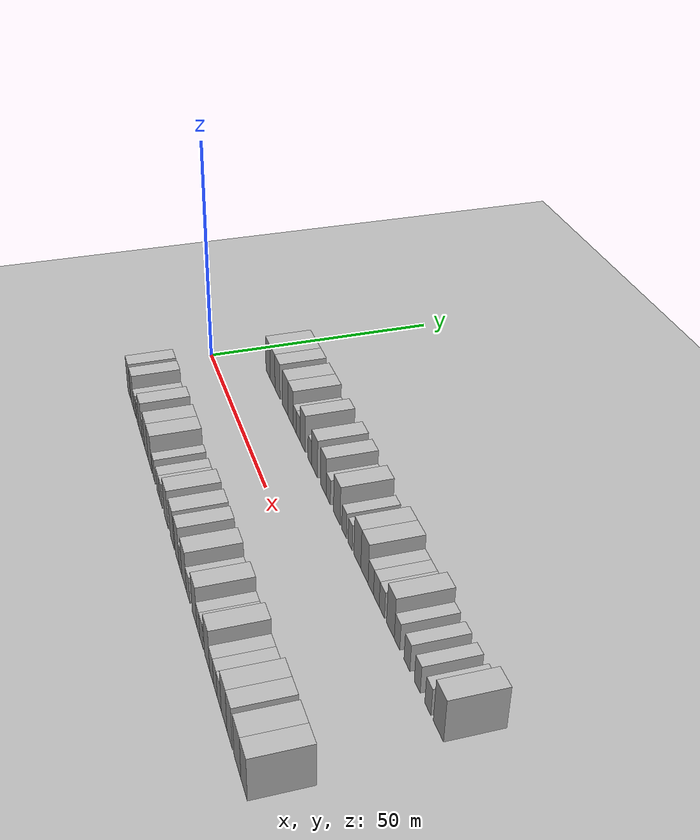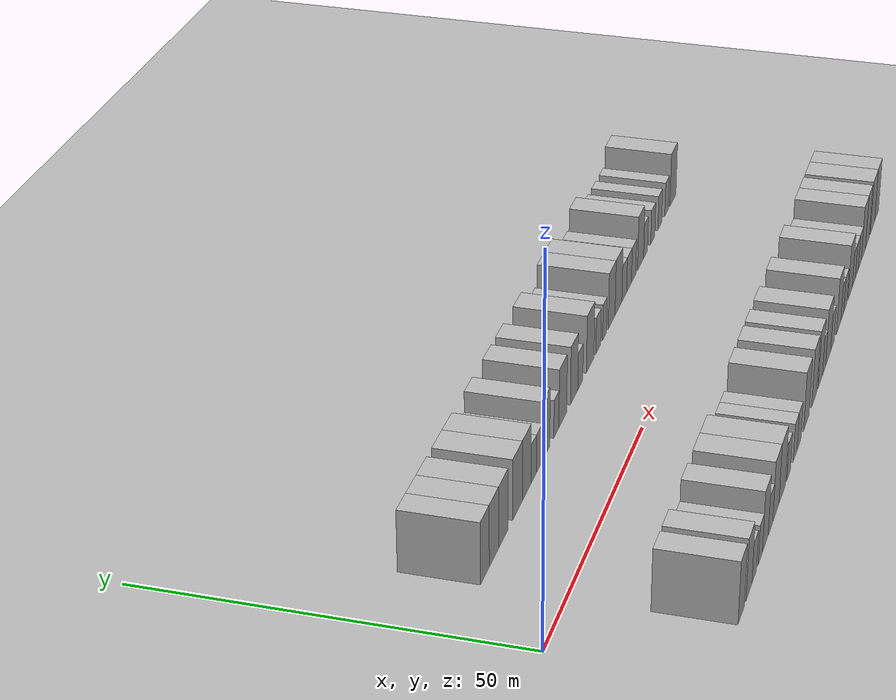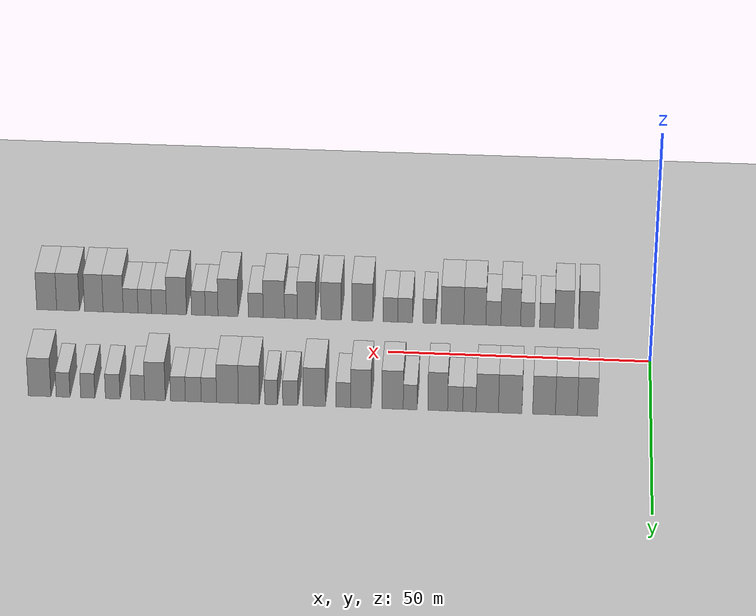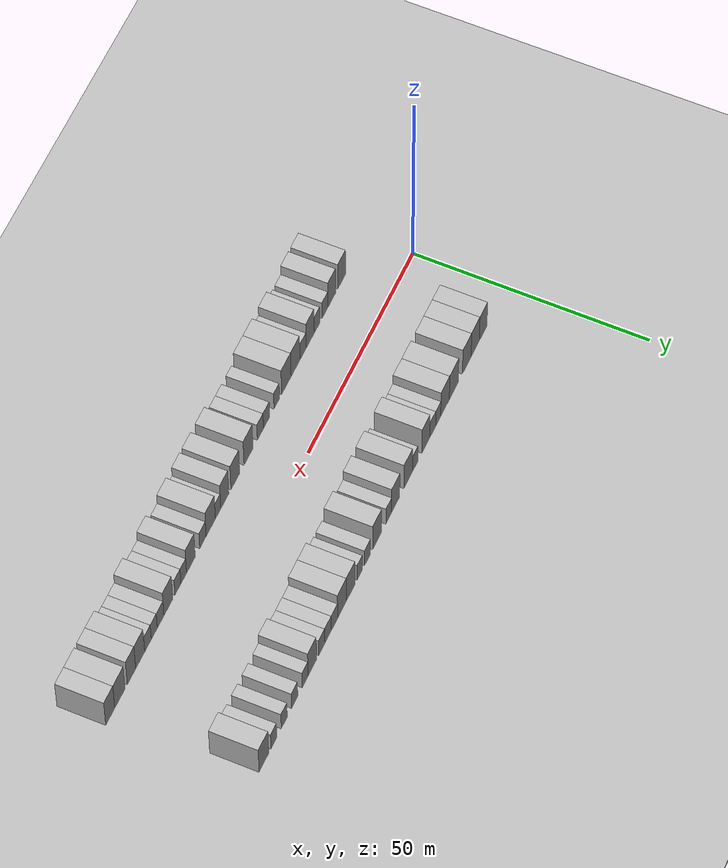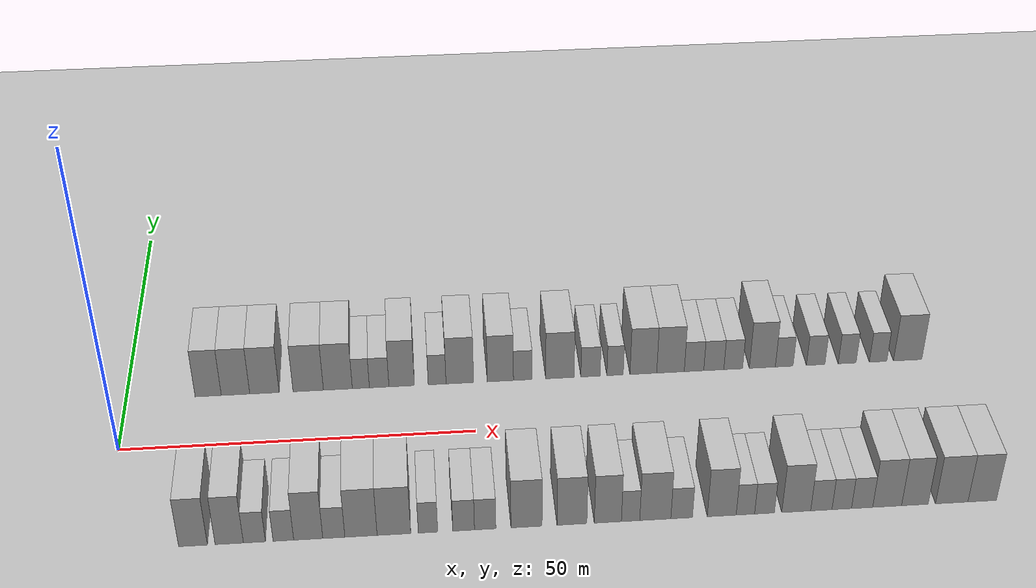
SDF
<sdf version="1.6">
 <world name="default">
  <include><name>ground_plane_1</name><uri>model://HANNAS_ground_plane</uri></include>
  <include>
   <name>ground_plane_2</name>
   <uri>model://HANNAS_ground_plane</uri>
   <pose>100 0 0  0 0 0</pose>
  </include>
  <model name="building_1">
   <static>1</static>
   <pose>11.8743 15.0000 0 0.000000 0.000000 1.570796</pose>
   <link name="link">
    <pose>0 0 4.50 0 0 0</pose>
    <collision name="collision"><geometry><box><size>10.0000 3.7485 9.0000</size></box></geometry></collision>
    <visual name="visual">
     <cast_shadows>0</cast_shadows>
     <geometry><box><size>10.0000 3.7485 9.0000</size></box></geometry>
     <material>
      <script>
       <uri>model://HANNAS_wall/materials/scripts</uri>
       <uri>model://HANNAS_wall/materials/textures</uri>
       <name>vrc/HANNAS_wall</name>
      </script>
     </material>
    </visual>
   </link>
  </model>
  <model name="building_2">
   <static>1</static>
   <pose>15.7916 15.0000 0 0.000000 0.000000 1.570796</pose>
   <link name="link">
    <pose>0 0 4.50 0 0 0</pose>
    <collision name="collision"><geometry><box><size>10.0000 4.0861 9.0000</size></box></geometry></collision>
    <visual name="visual">
     <cast_shadows>0</cast_shadows>
     <geometry><box><size>10.0000 4.0861 9.0000</size></box></geometry>
     <material>
      <script>
       <uri>model://HANNAS_wall/materials/scripts</uri>
       <uri>model://HANNAS_wall/materials/textures</uri>
       <name>vrc/HANNAS_wall</name>
      </script>
     </material>
    </visual>
   </link>
  </model>
  <model name="building_3">
   <static>1</static>
   <pose>19.9500 15.0000 0 0.000000 0.000000 1.570796</pose>
   <link name="link">
    <pose>0 0 4.50 0 0 0</pose>
    <collision name="collision"><geometry><box><size>10.0000 4.2307 9.0000</size></box></geometry></collision>
    <visual name="visual">
     <cast_shadows>0</cast_shadows>
     <geometry><box><size>10.0000 4.2307 9.0000</size></box></geometry>
     <material>
      <script>
       <uri>model://HANNAS_wall/materials/scripts</uri>
       <uri>model://HANNAS_wall/materials/textures</uri>
       <name>vrc/HANNAS_wall</name>
      </script>
     </material>
    </visual>
   </link>
  </model>
  <model name="building_4">
   <static>1</static>
   <pose>26.2549 15.0000 0 0.000000 0.000000 1.570796</pose>
   <link name="link">
    <pose>0 0 4.50 0 0 0</pose>
    <collision name="collision"><geometry><box><size>10.0000 4.3791 9.0000</size></box></geometry></collision>
    <visual name="visual">
     <cast_shadows>0</cast_shadows>
     <geometry><box><size>10.0000 4.3791 9.0000</size></box></geometry>
     <material>
      <script>
       <uri>model://HANNAS_wall/materials/scripts</uri>
       <uri>model://HANNAS_wall/materials/textures</uri>
       <name>vrc/HANNAS_wall</name>
      </script>
     </material>
    </visual>
   </link>
  </model>
  <model name="building_5">
   <static>1</static>
   <pose>30.5329 15.0000 0 0.000000 0.000000 1.570796</pose>
   <link name="link">
    <pose>0 0 4.50 0 0 0</pose>
    <collision name="collision"><geometry><box><size>10.0000 4.1769 9.0000</size></box></geometry></collision>
    <visual name="visual">
     <cast_shadows>0</cast_shadows>
     <geometry><box><size>10.0000 4.1769 9.0000</size></box></geometry>
     <material>
      <script>
       <uri>model://HANNAS_wall/materials/scripts</uri>
       <uri>model://HANNAS_wall/materials/textures</uri>
       <name>vrc/HANNAS_wall</name>
      </script>
     </material>
    </visual>
   </link>
  </model>
  <model name="building_6">
   <static>1</static>
   <pose>33.8588 15.0000 0 0.000000 0.000000 1.570796</pose>
   <link name="link">
    <pose>0 0 3.00 0 0 0</pose>
    <collision name="collision"><geometry><box><size>10.0000 2.4749 6.0000</size></box></geometry></collision>
    <visual name="visual">
     <cast_shadows>0</cast_shadows>
     <geometry><box><size>10.0000 2.4749 6.0000</size></box></geometry>
     <material>
      <script>
       <uri>model://HANNAS_wall/materials/scripts</uri>
       <uri>model://HANNAS_wall/materials/textures</uri>
       <name>vrc/HANNAS_wall</name>
      </script>
     </material>
    </visual>
   </link>
  </model>
  <model name="building_7">
   <static>1</static>
   <pose>36.5099 15.0000 0 0.000000 0.000000 1.570796</pose>
   <link name="link">
    <pose>0 0 3.00 0 0 0</pose>
    <collision name="collision"><geometry><box><size>10.0000 2.8275 6.0000</size></box></geometry></collision>
    <visual name="visual">
     <cast_shadows>0</cast_shadows>
     <geometry><box><size>10.0000 2.8275 6.0000</size></box></geometry>
     <material>
      <script>
       <uri>model://HANNAS_wall/materials/scripts</uri>
       <uri>model://HANNAS_wall/materials/textures</uri>
       <name>vrc/HANNAS_wall</name>
      </script>
     </material>
    </visual>
   </link>
  </model>
  <model name="building_8">
   <static>1</static>
   <pose>39.7782 15.0000 0 0.000000 0.000000 1.570796</pose>
   <link name="link">
    <pose>0 0 4.50 0 0 0</pose>
    <collision name="collision"><geometry><box><size>10.0000 3.7091 9.0000</size></box></geometry></collision>
    <visual name="visual">
     <cast_shadows>0</cast_shadows>
     <geometry><box><size>10.0000 3.7091 9.0000</size></box></geometry>
     <material>
      <script>
       <uri>model://HANNAS_wall/materials/scripts</uri>
       <uri>model://HANNAS_wall/materials/textures</uri>
       <name>vrc/HANNAS_wall</name>
      </script>
     </material>
    </visual>
   </link>
  </model>
  <model name="building_9">
   <static>1</static>
   <pose>44.9292 15.0000 0 0.000000 0.000000 1.570796</pose>
   <link name="link">
    <pose>0 0 3.00 0 0 0</pose>
    <collision name="collision"><geometry><box><size>10.0000 2.5927 6.0000</size></box></geometry></collision>
    <visual name="visual">
     <cast_shadows>0</cast_shadows>
     <geometry><box><size>10.0000 2.5927 6.0000</size></box></geometry>
     <material>
      <script>
       <uri>model://HANNAS_wall/materials/scripts</uri>
       <uri>model://HANNAS_wall/materials/textures</uri>
       <name>vrc/HANNAS_wall</name>
      </script>
     </material>
    </visual>
   </link>
  </model>
  <model name="building_10">
   <static>1</static>
   <pose>48.2375 15.0000 0 0.000000 0.000000 1.570796</pose>
   <link name="link">
    <pose>0 0 4.50 0 0 0</pose>
    <collision name="collision"><geometry><box><size>10.0000 4.0239 9.0000</size></box></geometry></collision>
    <visual name="visual">
     <cast_shadows>0</cast_shadows>
     <geometry><box><size>10.0000 4.0239 9.0000</size></box></geometry>
     <material>
      <script>
       <uri>model://HANNAS_wall/materials/scripts</uri>
       <uri>model://HANNAS_wall/materials/textures</uri>
       <name>vrc/HANNAS_wall</name>
      </script>
     </material>
    </visual>
   </link>
  </model>
  <model name="building_11">
   <static>1</static>
   <pose>54.1597 15.0000 0 0.000000 0.000000 1.570796</pose>
   <link name="link">
    <pose>0 0 4.50 0 0 0</pose>
    <collision name="collision"><geometry><box><size>10.0000 3.8205 9.0000</size></box></geometry></collision>
    <visual name="visual">
     <cast_shadows>0</cast_shadows>
     <geometry><box><size>10.0000 3.8205 9.0000</size></box></geometry>
     <material>
      <script>
       <uri>model://HANNAS_wall/materials/scripts</uri>
       <uri>model://HANNAS_wall/materials/textures</uri>
       <name>vrc/HANNAS_wall</name>
      </script>
     </material>
    </visual>
   </link>
  </model>
  <model name="building_12">
   <static>1</static>
   <pose>57.4333 15.0000 0 0.000000 0.000000 1.570796</pose>
   <link name="link">
    <pose>0 0 3.00 0 0 0</pose>
    <collision name="collision"><geometry><box><size>10.0000 2.7268 6.0000</size></box></geometry></collision>
    <visual name="visual">
     <cast_shadows>0</cast_shadows>
     <geometry><box><size>10.0000 2.7268 6.0000</size></box></geometry>
     <material>
      <script>
       <uri>model://HANNAS_wall/materials/scripts</uri>
       <uri>model://HANNAS_wall/materials/textures</uri>
       <name>vrc/HANNAS_wall</name>
      </script>
     </material>
    </visual>
   </link>
  </model>
  <model name="building_13">
   <static>1</static>
   <pose>62.8809 15.0000 0 0.000000 0.000000 1.570796</pose>
   <link name="link">
    <pose>0 0 4.50 0 0 0</pose>
    <collision name="collision"><geometry><box><size>10.0000 4.1684 9.0000</size></box></geometry></collision>
    <visual name="visual">
     <cast_shadows>0</cast_shadows>
     <geometry><box><size>10.0000 4.1684 9.0000</size></box></geometry>
     <material>
      <script>
       <uri>model://HANNAS_wall/materials/scripts</uri>
       <uri>model://HANNAS_wall/materials/textures</uri>
       <name>vrc/HANNAS_wall</name>
      </script>
     </material>
    </visual>
   </link>
  </model>
  <model name="building_14">
   <static>1</static>
   <pose>67.3798 15.0000 0 0.000000 0.000000 1.570796</pose>
   <link name="link">
    <pose>0 0 3.00 0 0 0</pose>
    <collision name="collision"><geometry><box><size>10.0000 2.8293 6.0000</size></box></geometry></collision>
    <visual name="visual">
     <cast_shadows>0</cast_shadows>
     <geometry><box><size>10.0000 2.8293 6.0000</size></box></geometry>
     <material>
      <script>
       <uri>model://HANNAS_wall/materials/scripts</uri>
       <uri>model://HANNAS_wall/materials/textures</uri>
       <name>vrc/HANNAS_wall</name>
      </script>
     </material>
    </visual>
   </link>
  </model>
  <model name="building_15">
   <static>1</static>
   <pose>70.9947 15.0000 0 0.000000 0.000000 1.570796</pose>
   <link name="link">
    <pose>0 0 3.00 0 0 0</pose>
    <collision name="collision"><geometry><box><size>10.0000 2.4004 6.0000</size></box></geometry></collision>
    <visual name="visual">
     <cast_shadows>0</cast_shadows>
     <geometry><box><size>10.0000 2.4004 6.0000</size></box></geometry>
     <material>
      <script>
       <uri>model://HANNAS_wall/materials/scripts</uri>
       <uri>model://HANNAS_wall/materials/textures</uri>
       <name>vrc/HANNAS_wall</name>
      </script>
     </material>
    </visual>
   </link>
  </model>
  <model name="building_16">
   <static>1</static>
   <pose>75.1674 15.0000 0 0.000000 0.000000 1.570796</pose>
   <link name="link">
    <pose>0 0 4.50 0 0 0</pose>
    <collision name="collision"><geometry><box><size>10.0000 3.9452 9.0000</size></box></geometry></collision>
    <visual name="visual">
     <cast_shadows>0</cast_shadows>
     <geometry><box><size>10.0000 3.9452 9.0000</size></box></geometry>
     <material>
      <script>
       <uri>model://HANNAS_wall/materials/scripts</uri>
       <uri>model://HANNAS_wall/materials/textures</uri>
       <name>vrc/HANNAS_wall</name>
      </script>
     </material>
    </visual>
   </link>
  </model>
  <model name="building_17">
   <static>1</static>
   <pose>79.1817 15.0000 0 0.000000 0.000000 1.570796</pose>
   <link name="link">
    <pose>0 0 4.50 0 0 0</pose>
    <collision name="collision"><geometry><box><size>10.0000 4.0834 9.0000</size></box></geometry></collision>
    <visual name="visual">
     <cast_shadows>0</cast_shadows>
     <geometry><box><size>10.0000 4.0834 9.0000</size></box></geometry>
     <material>
      <script>
       <uri>model://HANNAS_wall/materials/scripts</uri>
       <uri>model://HANNAS_wall/materials/textures</uri>
       <name>vrc/HANNAS_wall</name>
      </script>
     </material>
    </visual>
   </link>
  </model>
  <model name="building_18">
   <static>1</static>
   <pose>82.6705 15.0000 0 0.000000 0.000000 1.570796</pose>
   <link name="link">
    <pose>0 0 3.00 0 0 0</pose>
    <collision name="collision"><geometry><box><size>10.0000 2.8942 6.0000</size></box></geometry></collision>
    <visual name="visual">
     <cast_shadows>0</cast_shadows>
     <geometry><box><size>10.0000 2.8942 6.0000</size></box></geometry>
     <material>
      <script>
       <uri>model://HANNAS_wall/materials/scripts</uri>
       <uri>model://HANNAS_wall/materials/textures</uri>
       <name>vrc/HANNAS_wall</name>
      </script>
     </material>
    </visual>
   </link>
  </model>
  <model name="building_19">
   <static>1</static>
   <pose>85.6084 15.0000 0 0.000000 0.000000 1.570796</pose>
   <link name="link">
    <pose>0 0 3.00 0 0 0</pose>
    <collision name="collision"><geometry><box><size>10.0000 2.9817 6.0000</size></box></geometry></collision>
    <visual name="visual">
     <cast_shadows>0</cast_shadows>
     <geometry><box><size>10.0000 2.9817 6.0000</size></box></geometry>
     <material>
      <script>
       <uri>model://HANNAS_wall/materials/scripts</uri>
       <uri>model://HANNAS_wall/materials/textures</uri>
       <name>vrc/HANNAS_wall</name>
      </script>
     </material>
    </visual>
   </link>
  </model>
  <model name="building_20">
   <static>1</static>
   <pose>88.4929 15.0000 0 0.000000 0.000000 1.570796</pose>
   <link name="link">
    <pose>0 0 3.00 0 0 0</pose>
    <collision name="collision"><geometry><box><size>10.0000 2.7872 6.0000</size></box></geometry></collision>
    <visual name="visual">
     <cast_shadows>0</cast_shadows>
     <geometry><box><size>10.0000 2.7872 6.0000</size></box></geometry>
     <material>
      <script>
       <uri>model://HANNAS_wall/materials/scripts</uri>
       <uri>model://HANNAS_wall/materials/textures</uri>
       <name>vrc/HANNAS_wall</name>
      </script>
     </material>
    </visual>
   </link>
  </model>
  <model name="building_21">
   <static>1</static>
   <pose>92.8238 15.0000 0 0.000000 0.000000 1.570796</pose>
   <link name="link">
    <pose>0 0 4.50 0 0 0</pose>
    <collision name="collision"><geometry><box><size>10.0000 3.8746 9.0000</size></box></geometry></collision>
    <visual name="visual">
     <cast_shadows>0</cast_shadows>
     <geometry><box><size>10.0000 3.8746 9.0000</size></box></geometry>
     <material>
      <script>
       <uri>model://HANNAS_wall/materials/scripts</uri>
       <uri>model://HANNAS_wall/materials/textures</uri>
       <name>vrc/HANNAS_wall</name>
      </script>
     </material>
    </visual>
   </link>
  </model>
  <model name="building_22">
   <static>1</static>
   <pose>96.0821 15.0000 0 0.000000 0.000000 1.570796</pose>
   <link name="link">
    <pose>0 0 3.00 0 0 0</pose>
    <collision name="collision"><geometry><box><size>10.0000 2.6420 6.0000</size></box></geometry></collision>
    <visual name="visual">
     <cast_shadows>0</cast_shadows>
     <geometry><box><size>10.0000 2.6420 6.0000</size></box></geometry>
     <material>
      <script>
       <uri>model://HANNAS_wall/materials/scripts</uri>
       <uri>model://HANNAS_wall/materials/textures</uri>
       <name>vrc/HANNAS_wall</name>
      </script>
     </material>
    </visual>
   </link>
  </model>
  <model name="building_23">
   <static>1</static>
   <pose>100.7850 15.0000 0 0.000000 0.000000 1.570796</pose>
   <link name="link">
    <pose>0 0 3.00 0 0 0</pose>
    <collision name="collision"><geometry><box><size>10.0000 2.7638 6.0000</size></box></geometry></collision>
    <visual name="visual">
     <cast_shadows>0</cast_shadows>
     <geometry><box><size>10.0000 2.7638 6.0000</size></box></geometry>
     <material>
      <script>
       <uri>model://HANNAS_wall/materials/scripts</uri>
       <uri>model://HANNAS_wall/materials/textures</uri>
       <name>vrc/HANNAS_wall</name>
      </script>
     </material>
    </visual>
   </link>
  </model>
  <model name="building_24">
   <static>1</static>
   <pose>105.5017 15.0000 0 0.000000 0.000000 1.570796</pose>
   <link name="link">
    <pose>0 0 3.00 0 0 0</pose>
    <collision name="collision"><geometry><box><size>10.0000 2.6697 6.0000</size></box></geometry></collision>
    <visual name="visual">
     <cast_shadows>0</cast_shadows>
     <geometry><box><size>10.0000 2.6697 6.0000</size></box></geometry>
     <material>
      <script>
       <uri>model://HANNAS_wall/materials/scripts</uri>
       <uri>model://HANNAS_wall/materials/textures</uri>
       <name>vrc/HANNAS_wall</name>
      </script>
     </material>
    </visual>
   </link>
  </model>
  <model name="building_25">
   <static>1</static>
   <pose>110.1485 15.0000 0 0.000000 0.000000 1.570796</pose>
   <link name="link">
    <pose>0 0 3.00 0 0 0</pose>
    <collision name="collision"><geometry><box><size>10.0000 2.6238 6.0000</size></box></geometry></collision>
    <visual name="visual">
     <cast_shadows>0</cast_shadows>
     <geometry><box><size>10.0000 2.6238 6.0000</size></box></geometry>
     <material>
      <script>
       <uri>model://HANNAS_wall/materials/scripts</uri>
       <uri>model://HANNAS_wall/materials/textures</uri>
       <name>vrc/HANNAS_wall</name>
      </script>
     </material>
    </visual>
   </link>
  </model>
  <model name="building_26">
   <static>1</static>
   <pose>114.5944 15.0000 0 0.000000 0.000000 1.570796</pose>
   <link name="link">
    <pose>0 0 4.50 0 0 0</pose>
    <collision name="collision"><geometry><box><size>10.0000 4.2680 9.0000</size></box></geometry></collision>
    <visual name="visual">
     <cast_shadows>0</cast_shadows>
     <geometry><box><size>10.0000 4.2680 9.0000</size></box></geometry>
     <material>
      <script>
       <uri>model://HANNAS_wall/materials/scripts</uri>
       <uri>model://HANNAS_wall/materials/textures</uri>
       <name>vrc/HANNAS_wall</name>
      </script>
     </material>
    </visual>
   </link>
  </model>
  <model name="building_54">
   <static>1</static>
   <pose>11.8688 -15.0000 0 0.000000 0.000000 1.570796</pose>
   <link name="link">
    <pose>0 0 4.50 0 0 0</pose>
    <collision name="collision"><geometry><box><size>10.0000 3.7377 9.0000</size></box></geometry></collision>
    <visual name="visual">
     <cast_shadows>0</cast_shadows>
     <geometry><box><size>10.0000 3.7377 9.0000</size></box></geometry>
     <material>
      <script>
       <uri>model://HANNAS_wall/materials/scripts</uri>
       <uri>model://HANNAS_wall/materials/textures</uri>
       <name>vrc/HANNAS_wall</name>
      </script>
     </material>
    </visual>
   </link>
  </model>
  <model name="building_55">
   <static>1</static>
   <pose>16.5794 -15.0000 0 0.000000 0.000000 1.570796</pose>
   <link name="link">
    <pose>0 0 4.50 0 0 0</pose>
    <collision name="collision"><geometry><box><size>10.0000 3.6836 9.0000</size></box></geometry></collision>
    <visual name="visual">
     <cast_shadows>0</cast_shadows>
     <geometry><box><size>10.0000 3.6836 9.0000</size></box></geometry>
     <material>
      <script>
       <uri>model://HANNAS_wall/materials/scripts</uri>
       <uri>model://HANNAS_wall/materials/textures</uri>
       <name>vrc/HANNAS_wall</name>
      </script>
     </material>
    </visual>
   </link>
  </model>
  <model name="building_56">
   <static>1</static>
   <pose>19.8574 -15.0000 0 0.000000 0.000000 1.570796</pose>
   <link name="link">
    <pose>0 0 3.00 0 0 0</pose>
    <collision name="collision"><geometry><box><size>10.0000 2.8724 6.0000</size></box></geometry></collision>
    <visual name="visual">
     <cast_shadows>0</cast_shadows>
     <geometry><box><size>10.0000 2.8724 6.0000</size></box></geometry>
     <material>
      <script>
       <uri>model://HANNAS_wall/materials/scripts</uri>
       <uri>model://HANNAS_wall/materials/textures</uri>
       <name>vrc/HANNAS_wall</name>
      </script>
     </material>
    </visual>
   </link>
  </model>
  <model name="building_57">
   <static>1</static>
   <pose>23.6391 -15.0000 0 0.000000 0.000000 1.570796</pose>
   <link name="link">
    <pose>0 0 3.00 0 0 0</pose>
    <collision name="collision"><geometry><box><size>10.0000 2.6911 6.0000</size></box></geometry></collision>
    <visual name="visual">
     <cast_shadows>0</cast_shadows>
     <geometry><box><size>10.0000 2.6911 6.0000</size></box></geometry>
     <material>
      <script>
       <uri>model://HANNAS_wall/materials/scripts</uri>
       <uri>model://HANNAS_wall/materials/textures</uri>
       <name>vrc/HANNAS_wall</name>
      </script>
     </material>
    </visual>
   </link>
  </model>
  <model name="building_58">
   <static>1</static>
   <pose>26.8901 -15.0000 0 0.000000 0.000000 1.570796</pose>
   <link name="link">
    <pose>0 0 4.50 0 0 0</pose>
    <collision name="collision"><geometry><box><size>10.0000 3.8110 9.0000</size></box></geometry></collision>
    <visual name="visual">
     <cast_shadows>0</cast_shadows>
     <geometry><box><size>10.0000 3.8110 9.0000</size></box></geometry>
     <material>
      <script>
       <uri>model://HANNAS_wall/materials/scripts</uri>
       <uri>model://HANNAS_wall/materials/textures</uri>
       <name>vrc/HANNAS_wall</name>
      </script>
     </material>
    </visual>
   </link>
  </model>
  <model name="building_59">
   <static>1</static>
   <pose>30.2438 -15.0000 0 0.000000 0.000000 1.570796</pose>
   <link name="link">
    <pose>0 0 3.00 0 0 0</pose>
    <collision name="collision"><geometry><box><size>10.0000 2.8964 6.0000</size></box></geometry></collision>
    <visual name="visual">
     <cast_shadows>0</cast_shadows>
     <geometry><box><size>10.0000 2.8964 6.0000</size></box></geometry>
     <material>
      <script>
       <uri>model://HANNAS_wall/materials/scripts</uri>
       <uri>model://HANNAS_wall/materials/textures</uri>
       <name>vrc/HANNAS_wall</name>
      </script>
     </material>
    </visual>
   </link>
  </model>
  <model name="building_60">
   <static>1</static>
   <pose>33.8105 -15.0000 0 0.000000 0.000000 1.570796</pose>
   <link name="link">
    <pose>0 0 4.50 0 0 0</pose>
    <collision name="collision"><geometry><box><size>10.0000 4.2371 9.0000</size></box></geometry></collision>
    <visual name="visual">
     <cast_shadows>0</cast_shadows>
     <geometry><box><size>10.0000 4.2371 9.0000</size></box></geometry>
     <material>
      <script>
       <uri>model://HANNAS_wall/materials/scripts</uri>
       <uri>model://HANNAS_wall/materials/textures</uri>
       <name>vrc/HANNAS_wall</name>
      </script>
     </material>
    </visual>
   </link>
  </model>
  <model name="building_61">
   <static>1</static>
   <pose>38.1423 -15.0000 0 0.000000 0.000000 1.570796</pose>
   <link name="link">
    <pose>0 0 4.50 0 0 0</pose>
    <collision name="collision"><geometry><box><size>10.0000 4.4265 9.0000</size></box></geometry></collision>
    <visual name="visual">
     <cast_shadows>0</cast_shadows>
     <geometry><box><size>10.0000 4.4265 9.0000</size></box></geometry>
     <material>
      <script>
       <uri>model://HANNAS_wall/materials/scripts</uri>
       <uri>model://HANNAS_wall/materials/textures</uri>
       <name>vrc/HANNAS_wall</name>
      </script>
     </material>
    </visual>
   </link>
  </model>
  <model name="building_62">
   <static>1</static>
   <pose>42.6361 -15.0000 0 0.000000 0.000000 1.570796</pose>
   <link name="link">
    <pose>0 0 3.00 0 0 0</pose>
    <collision name="collision"><geometry><box><size>10.0000 2.5611 6.0000</size></box></geometry></collision>
    <visual name="visual">
     <cast_shadows>0</cast_shadows>
     <geometry><box><size>10.0000 2.5611 6.0000</size></box></geometry>
     <material>
      <script>
       <uri>model://HANNAS_wall/materials/scripts</uri>
       <uri>model://HANNAS_wall/materials/textures</uri>
       <name>vrc/HANNAS_wall</name>
      </script>
     </material>
    </visual>
   </link>
  </model>
  <model name="building_63">
   <static>1</static>
   <pose>47.3484 -15.0000 0 0.000000 0.000000 1.570796</pose>
   <link name="link">
    <pose>0 0 3.00 0 0 0</pose>
    <collision name="collision"><geometry><box><size>10.0000 2.8635 6.0000</size></box></geometry></collision>
    <visual name="visual">
     <cast_shadows>0</cast_shadows>
     <geometry><box><size>10.0000 2.8635 6.0000</size></box></geometry>
     <material>
      <script>
       <uri>model://HANNAS_wall/materials/scripts</uri>
       <uri>model://HANNAS_wall/materials/textures</uri>
       <name>vrc/HANNAS_wall</name>
      </script>
     </material>
    </visual>
   </link>
  </model>
  <model name="building_64">
   <static>1</static>
   <pose>50.1985 -15.0000 0 0.000000 0.000000 1.570796</pose>
   <link name="link">
    <pose>0 0 3.00 0 0 0</pose>
    <collision name="collision"><geometry><box><size>10.0000 2.8366 6.0000</size></box></geometry></collision>
    <visual name="visual">
     <cast_shadows>0</cast_shadows>
     <geometry><box><size>10.0000 2.8366 6.0000</size></box></geometry>
     <material>
      <script>
       <uri>model://HANNAS_wall/materials/scripts</uri>
       <uri>model://HANNAS_wall/materials/textures</uri>
       <name>vrc/HANNAS_wall</name>
      </script>
     </material>
    </visual>
   </link>
  </model>
  <model name="building_65">
   <static>1</static>
   <pose>55.6811 -15.0000 0 0.000000 0.000000 1.570796</pose>
   <link name="link">
    <pose>0 0 4.50 0 0 0</pose>
    <collision name="collision"><geometry><box><size>10.0000 4.1286 9.0000</size></box></geometry></collision>
    <visual name="visual">
     <cast_shadows>0</cast_shadows>
     <geometry><box><size>10.0000 4.1286 9.0000</size></box></geometry>
     <material>
      <script>
       <uri>model://HANNAS_wall/materials/scripts</uri>
       <uri>model://HANNAS_wall/materials/textures</uri>
       <name>vrc/HANNAS_wall</name>
      </script>
     </material>
    </visual>
   </link>
  </model>
  <model name="building_66">
   <static>1</static>
   <pose>61.7320 -15.0000 0 0.000000 0.000000 1.570796</pose>
   <link name="link">
    <pose>0 0 4.50 0 0 0</pose>
    <collision name="collision"><geometry><box><size>10.0000 3.9733 9.0000</size></box></geometry></collision>
    <visual name="visual">
     <cast_shadows>0</cast_shadows>
     <geometry><box><size>10.0000 3.9733 9.0000</size></box></geometry>
     <material>
      <script>
       <uri>model://HANNAS_wall/materials/scripts</uri>
       <uri>model://HANNAS_wall/materials/textures</uri>
       <name>vrc/HANNAS_wall</name>
      </script>
     </material>
    </visual>
   </link>
  </model>
  <model name="building_67">
   <static>1</static>
   <pose>66.5283 -15.0000 0 0.000000 0.000000 1.570796</pose>
   <link name="link">
    <pose>0 0 4.50 0 0 0</pose>
    <collision name="collision"><geometry><box><size>10.0000 3.6192 9.0000</size></box></geometry></collision>
    <visual name="visual">
     <cast_shadows>0</cast_shadows>
     <geometry><box><size>10.0000 3.6192 9.0000</size></box></geometry>
     <material>
      <script>
       <uri>model://HANNAS_wall/materials/scripts</uri>
       <uri>model://HANNAS_wall/materials/textures</uri>
       <name>vrc/HANNAS_wall</name>
      </script>
     </material>
    </visual>
   </link>
  </model>
  <model name="building_68">
   <static>1</static>
   <pose>69.5654 -15.0000 0 0.000000 0.000000 1.570796</pose>
   <link name="link">
    <pose>0 0 3.00 0 0 0</pose>
    <collision name="collision"><geometry><box><size>10.0000 2.4549 6.0000</size></box></geometry></collision>
    <visual name="visual">
     <cast_shadows>0</cast_shadows>
     <geometry><box><size>10.0000 2.4549 6.0000</size></box></geometry>
     <material>
      <script>
       <uri>model://HANNAS_wall/materials/scripts</uri>
       <uri>model://HANNAS_wall/materials/textures</uri>
       <name>vrc/HANNAS_wall</name>
      </script>
     </material>
    </visual>
   </link>
  </model>
  <model name="building_69">
   <static>1</static>
   <pose>72.8807 -15.0000 0 0.000000 0.000000 1.570796</pose>
   <link name="link">
    <pose>0 0 4.50 0 0 0</pose>
    <collision name="collision"><geometry><box><size>10.0000 4.1757 9.0000</size></box></geometry></collision>
    <visual name="visual">
     <cast_shadows>0</cast_shadows>
     <geometry><box><size>10.0000 4.1757 9.0000</size></box></geometry>
     <material>
      <script>
       <uri>model://HANNAS_wall/materials/scripts</uri>
       <uri>model://HANNAS_wall/materials/textures</uri>
       <name>vrc/HANNAS_wall</name>
      </script>
     </material>
    </visual>
   </link>
  </model>
  <model name="building_70">
   <static>1</static>
   <pose>76.4175 -15.0000 0 0.000000 0.000000 1.570796</pose>
   <link name="link">
    <pose>0 0 3.00 0 0 0</pose>
    <collision name="collision"><geometry><box><size>10.0000 2.8979 6.0000</size></box></geometry></collision>
    <visual name="visual">
     <cast_shadows>0</cast_shadows>
     <geometry><box><size>10.0000 2.8979 6.0000</size></box></geometry>
     <material>
      <script>
       <uri>model://HANNAS_wall/materials/scripts</uri>
       <uri>model://HANNAS_wall/materials/textures</uri>
       <name>vrc/HANNAS_wall</name>
      </script>
     </material>
    </visual>
   </link>
  </model>
  <model name="building_71">
   <static>1</static>
   <pose>81.8172 -15.0000 0 0.000000 0.000000 1.570796</pose>
   <link name="link">
    <pose>0 0 4.50 0 0 0</pose>
    <collision name="collision"><geometry><box><size>10.0000 3.9014 9.0000</size></box></geometry></collision>
    <visual name="visual">
     <cast_shadows>0</cast_shadows>
     <geometry><box><size>10.0000 3.9014 9.0000</size></box></geometry>
     <material>
      <script>
       <uri>model://HANNAS_wall/materials/scripts</uri>
       <uri>model://HANNAS_wall/materials/textures</uri>
       <name>vrc/HANNAS_wall</name>
      </script>
     </material>
    </visual>
   </link>
  </model>
  <model name="building_72">
   <static>1</static>
   <pose>85.0114 -15.0000 0 0.000000 0.000000 1.570796</pose>
   <link name="link">
    <pose>0 0 3.00 0 0 0</pose>
    <collision name="collision"><geometry><box><size>10.0000 2.4870 6.0000</size></box></geometry></collision>
    <visual name="visual">
     <cast_shadows>0</cast_shadows>
     <geometry><box><size>10.0000 2.4870 6.0000</size></box></geometry>
     <material>
      <script>
       <uri>model://HANNAS_wall/materials/scripts</uri>
       <uri>model://HANNAS_wall/materials/textures</uri>
       <name>vrc/HANNAS_wall</name>
      </script>
     </material>
    </visual>
   </link>
  </model>
  <model name="building_73">
   <static>1</static>
   <pose>87.5904 -15.0000 0 0.000000 0.000000 1.570796</pose>
   <link name="link">
    <pose>0 0 3.00 0 0 0</pose>
    <collision name="collision"><geometry><box><size>10.0000 2.6711 6.0000</size></box></geometry></collision>
    <visual name="visual">
     <cast_shadows>0</cast_shadows>
     <geometry><box><size>10.0000 2.6711 6.0000</size></box></geometry>
     <material>
      <script>
       <uri>model://HANNAS_wall/materials/scripts</uri>
       <uri>model://HANNAS_wall/materials/textures</uri>
       <name>vrc/HANNAS_wall</name>
      </script>
     </material>
    </visual>
   </link>
  </model>
  <model name="building_74">
   <static>1</static>
   <pose>91.8857 -15.0000 0 0.000000 0.000000 1.570796</pose>
   <link name="link">
    <pose>0 0 4.50 0 0 0</pose>
    <collision name="collision"><geometry><box><size>10.0000 3.9196 9.0000</size></box></geometry></collision>
    <visual name="visual">
     <cast_shadows>0</cast_shadows>
     <geometry><box><size>10.0000 3.9196 9.0000</size></box></geometry>
     <material>
      <script>
       <uri>model://HANNAS_wall/materials/scripts</uri>
       <uri>model://HANNAS_wall/materials/textures</uri>
       <name>vrc/HANNAS_wall</name>
      </script>
     </material>
    </visual>
   </link>
  </model>
  <model name="building_75">
   <static>1</static>
   <pose>95.2923 -15.0000 0 0.000000 0.000000 1.570796</pose>
   <link name="link">
    <pose>0 0 3.00 0 0 0</pose>
    <collision name="collision"><geometry><box><size>10.0000 2.8935 6.0000</size></box></geometry></collision>
    <visual name="visual">
     <cast_shadows>0</cast_shadows>
     <geometry><box><size>10.0000 2.8935 6.0000</size></box></geometry>
     <material>
      <script>
       <uri>model://HANNAS_wall/materials/scripts</uri>
       <uri>model://HANNAS_wall/materials/textures</uri>
       <name>vrc/HANNAS_wall</name>
      </script>
     </material>
    </visual>
   </link>
  </model>
  <model name="building_76">
   <static>1</static>
   <pose>98.0653 -15.0000 0 0.000000 0.000000 1.570796</pose>
   <link name="link">
    <pose>0 0 3.00 0 0 0</pose>
    <collision name="collision"><geometry><box><size>10.0000 2.6526 6.0000</size></box></geometry></collision>
    <visual name="visual">
     <cast_shadows>0</cast_shadows>
     <geometry><box><size>10.0000 2.6526 6.0000</size></box></geometry>
     <material>
      <script>
       <uri>model://HANNAS_wall/materials/scripts</uri>
       <uri>model://HANNAS_wall/materials/textures</uri>
       <name>vrc/HANNAS_wall</name>
      </script>
     </material>
    </visual>
   </link>
  </model>
  <model name="building_77">
   <static>1</static>
   <pose>100.8363 -15.0000 0 0.000000 0.000000 1.570796</pose>
   <link name="link">
    <pose>0 0 3.00 0 0 0</pose>
    <collision name="collision"><geometry><box><size>10.0000 2.8894 6.0000</size></box></geometry></collision>
    <visual name="visual">
     <cast_shadows>0</cast_shadows>
     <geometry><box><size>10.0000 2.8894 6.0000</size></box></geometry>
     <material>
      <script>
       <uri>model://HANNAS_wall/materials/scripts</uri>
       <uri>model://HANNAS_wall/materials/textures</uri>
       <name>vrc/HANNAS_wall</name>
      </script>
     </material>
    </visual>
   </link>
  </model>
  <model name="building_78">
   <static>1</static>
   <pose>104.2514 -15.0000 0 0.000000 0.000000 1.570796</pose>
   <link name="link">
    <pose>0 0 4.50 0 0 0</pose>
    <collision name="collision"><geometry><box><size>10.0000 3.9408 9.0000</size></box></geometry></collision>
    <visual name="visual">
     <cast_shadows>0</cast_shadows>
     <geometry><box><size>10.0000 3.9408 9.0000</size></box></geometry>
     <material>
      <script>
       <uri>model://HANNAS_wall/materials/scripts</uri>
       <uri>model://HANNAS_wall/materials/textures</uri>
       <name>vrc/HANNAS_wall</name>
      </script>
     </material>
    </visual>
   </link>
  </model>
  <model name="building_79">
   <static>1</static>
   <pose>108.0422 -15.0000 0 0.000000 0.000000 1.570796</pose>
   <link name="link">
    <pose>0 0 4.50 0 0 0</pose>
    <collision name="collision"><geometry><box><size>10.0000 3.6409 9.0000</size></box></geometry></collision>
    <visual name="visual">
     <cast_shadows>0</cast_shadows>
     <geometry><box><size>10.0000 3.6409 9.0000</size></box></geometry>
     <material>
      <script>
       <uri>model://HANNAS_wall/materials/scripts</uri>
       <uri>model://HANNAS_wall/materials/textures</uri>
       <name>vrc/HANNAS_wall</name>
      </script>
     </material>
    </visual>
   </link>
  </model>
  <model name="building_80">
   <static>1</static>
   <pose>113.0856 -15.0000 0 0.000000 0.000000 1.570796</pose>
   <link name="link">
    <pose>0 0 4.50 0 0 0</pose>
    <collision name="collision"><geometry><box><size>10.0000 4.4459 9.0000</size></box></geometry></collision>
    <visual name="visual">
     <cast_shadows>0</cast_shadows>
     <geometry><box><size>10.0000 4.4459 9.0000</size></box></geometry>
     <material>
      <script>
       <uri>model://HANNAS_wall/materials/scripts</uri>
       <uri>model://HANNAS_wall/materials/textures</uri>
       <name>vrc/HANNAS_wall</name>
      </script>
     </material>
    </visual>
   </link>
  </model>
  <model name="building_81">
   <static>1</static>
   <pose>117.2634 -15.0000 0 0.000000 0.000000 1.570796</pose>
   <link name="link">
    <pose>0 0 4.50 0 0 0</pose>
    <collision name="collision"><geometry><box><size>10.0000 3.9097 9.0000</size></box></geometry></collision>
    <visual name="visual">
     <cast_shadows>0</cast_shadows>
     <geometry><box><size>10.0000 3.9097 9.0000</size></box></geometry>
     <material>
      <script>
       <uri>model://HANNAS_wall/materials/scripts</uri>
       <uri>model://HANNAS_wall/materials/textures</uri>
       <name>vrc/HANNAS_wall</name>
      </script>
     </material>
    </visual>
   </link>
  </model>
 </world>
</sdf>
